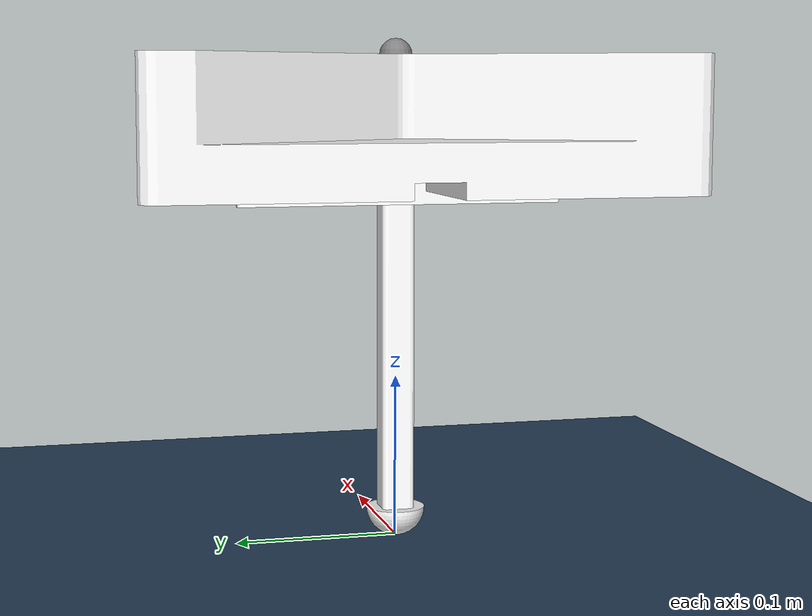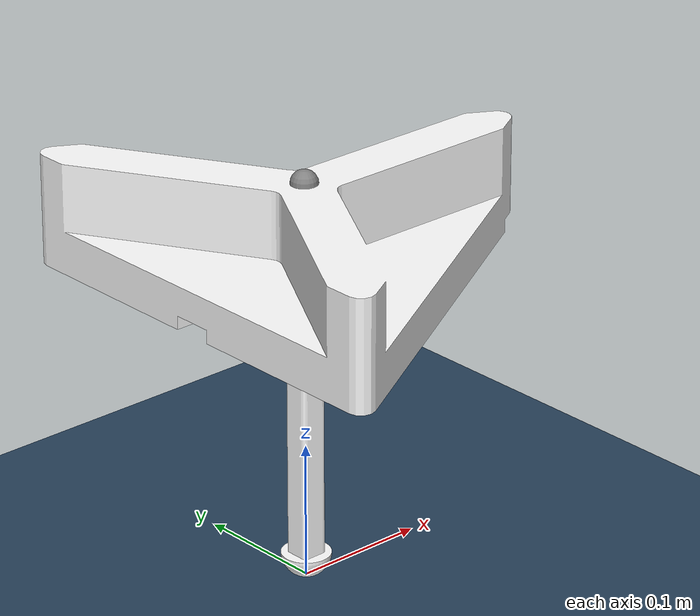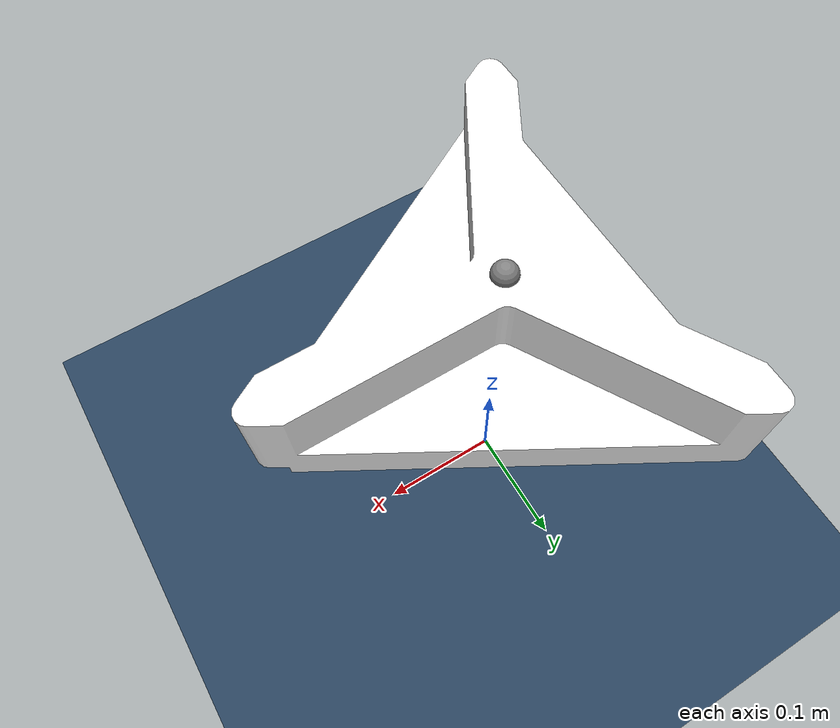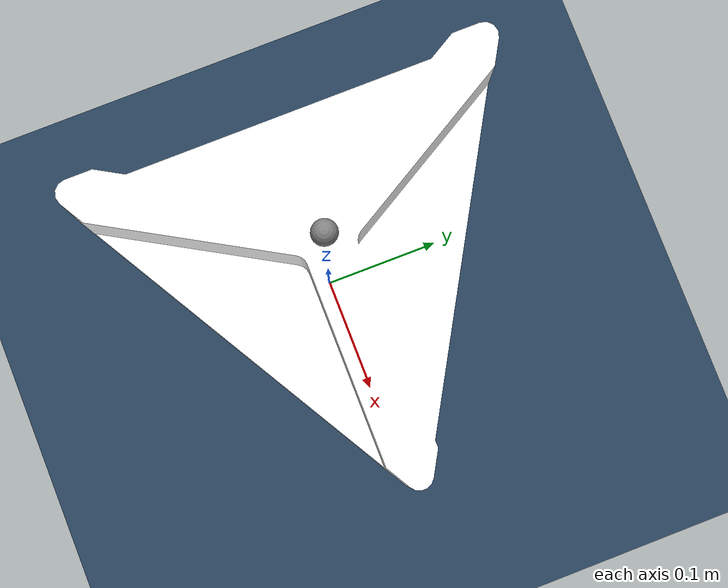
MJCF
<mujoco model="RLSLIP">
  <option gravity="0 0 -9.81"/>
  <compiler angle="radian" meshdir="../meshes/"/>
  <statistic meansize="0.0845861" extent="0.535157" center="-0.000773518 1.58376e-09 -0.059744"/>
  <option timestep="0.001" integrator="RK4"/>
  <asset>
    <mesh name="base_link" file="base_link.STL"/>
    <mesh name="xdof_Link" file="xdof_Link.STL"/>
    <mesh name="ydof_Link" file="ydof_Link.STL"/>
    <mesh name="zdof_Link" file="zdof_Link.STL"/>

    <texture name="grid" type="2d" builtin="checker" rgb1=".1 .2 .3" rgb2=".2 .3 .4" width="300" height="300"/>
    <material name="grid" texture="grid" texrepeat="8 8" reflectance=".1"/>
  </asset>

  <default>
    <geom contype="0" conaffinity="0" />
  </default>

  <worldbody>
    <light name="top" pos="0 0 10" castshadow="false" />
    <geom name="floor" size="10 10 .01" type="plane" pos="0 0 0" material="grid" contype="1" conaffinity="1" />

    <body name="base_Link" pos="0 0 0.297">
      <freejoint />
      <site name="Imu" size=".01" pos="0 0 0"/>
      <inertial pos="-0.001404 0 -0.04959" quat="0 0 0 1" mass="2.6327" diaginertia="0.015649 0.014904 0.027811"/>
      <geom type="mesh" contype="1" conaffinity="0" rgba="1 1 1 1" mesh="base_link"/>
      <body name="xdof_Link" pos="0 0 -0.072">
        <inertial pos="0 0 -0.011032" quat="0.5 0.5 -0.5 0.5" mass="0.037622" diaginertia="9.9536e-05 9.6505e-05 4.3121e-06"/>
        <joint name="xdof_Joint" pos="0 0 0" axis="-1 0 0" type="slide" range="-0.075 0.075"/>
        <geom type="mesh" rgba="1 1 1 1" mesh="xdof_Link"/>
        <body name="ydof_Link" pos="0 0 -0.013">
          <inertial pos="0 0 -0.097" mass="0.050657" diaginertia="0.00016108 0.00016108 4.4136e-06"/>
          <joint name="ydof_Joint" pos="0 0 0" axis="0 -1 0" type="slide" range="-0.075 0.075"/>
          <geom type="mesh" rgba="1 1 1 1" mesh="ydof_Link"/>
          <body name="zdof_Link" pos="0 0 -0.194">
            <inertial pos="0 0 0.0046192" mass="0.019409" diaginertia="7.069e-06 7.069e-06 1.7683e-06"/>
            <joint name="zdof_Joint" pos="0 0 0" axis="0 0 -1" type="slide" range="0.0 0.075"/>
            <geom type="mesh" contype="1" conaffinity="0" rgba="1 1 1 1" mesh="zdof_Link"/>
          </body>
        </body>
      </body>
    </body>
  </worldbody>

  <actuator>
    <motor name="JointX_motor" gear="1" joint="xdof_Joint"/>
    <motor name="JointY_motor" gear="1" joint="ydof_Joint" />
    <motor name="JointZ_motor" gear="1" joint="zdof_Joint"/>
  </actuator>

  <sensor>
    <!-- Imu data -->
    <!-- Todo: add noise and cutoff -->
    <framequat name="BodyQuat" objtype="site" objname="Imu"/>
    <gyro name="BodyGyro" site="Imu" noise="0" />
    <accelerometer name="BodyAcc" site="Imu" noise="0" cutoff="100"/>
    <velocimeter name="BodyVel" site="Imu" noise="0" cutoff="100"/>

    <!-- Joint data -->
    <actuatorpos name="JointXPos" actuator="JointX_motor" noise="0"/>
    <actuatorpos name="JointYPos" actuator="JointY_motor" noise="0"/>
    <actuatorpos name="JointZPos" actuator="JointZ_motor" noise="0"/>

    <actuatorvel name="JointXVel" actuator="JointX_motor" noise="0"/>
    <actuatorvel name="JointYVel" actuator="JointY_motor" noise="0"/>
    <actuatorvel name="JointZVel" actuator="JointZ_motor" noise="0"/>

    <actuatorfrc name="JointXTor" actuator="JointX_motor" noise="0"/>
    <actuatorfrc name="JointYTor" actuator="JointY_motor" noise="0"/>
    <actuatorfrc name="JointZTor" actuator="JointZ_motor" noise="0"/>
  </sensor>

</mujoco>
